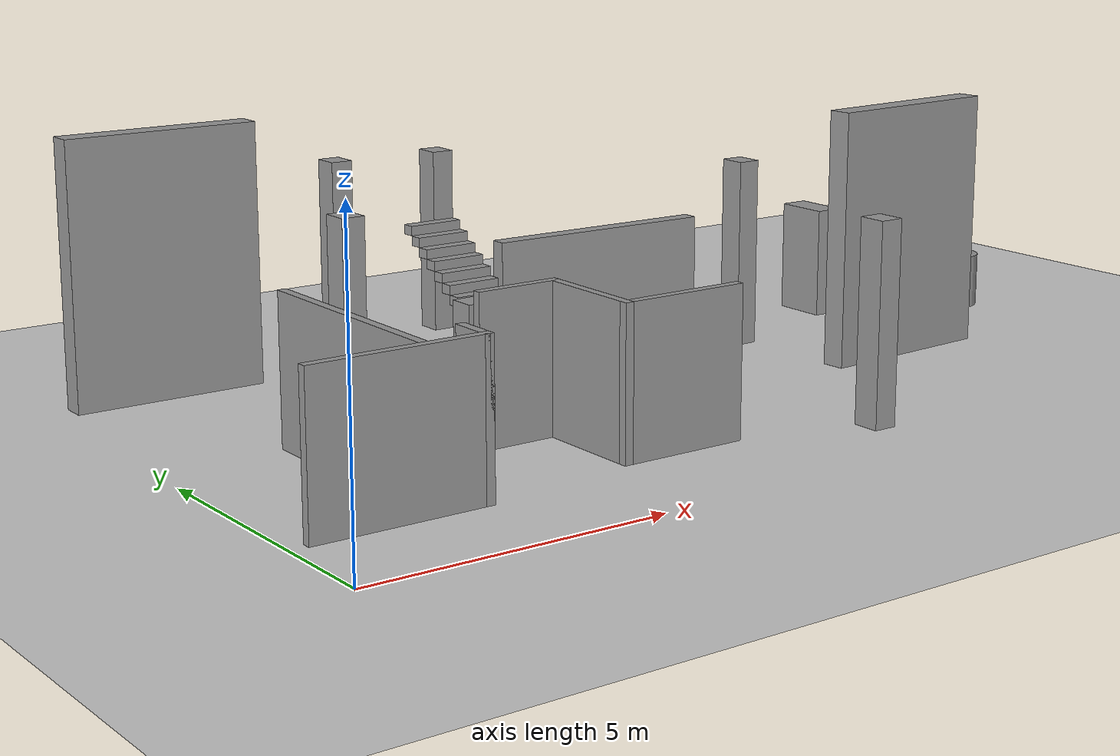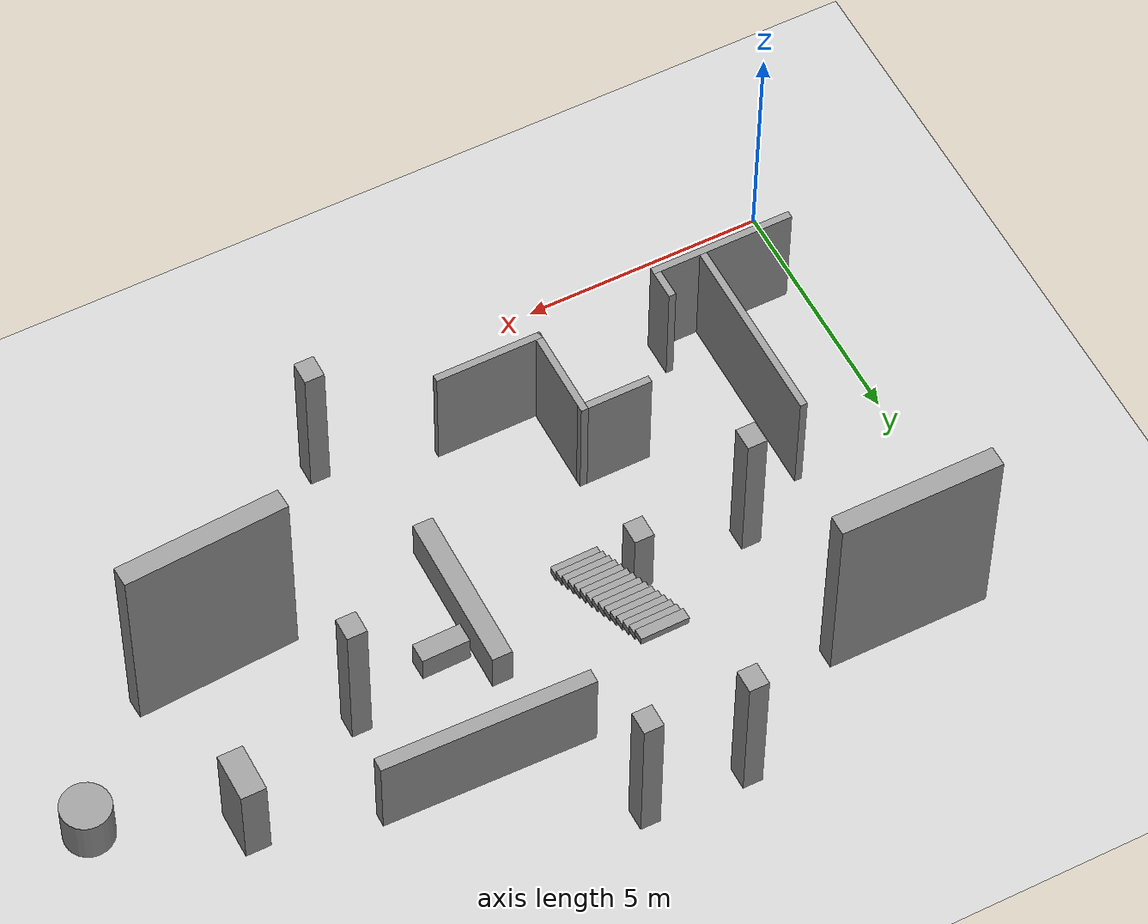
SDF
<sdf version="1.6">
 <world name="default">
  <plugin name="gazebo_octomap_plugin" filename="librotors_gazebo_octomap_plugin.so">
   <octomapPubTopic>world/octomap</octomapPubTopic>
   <octomapServiceName>world/get_octomap</octomapServiceName>
  </plugin>
  <plugin name="ros_interface_plugin" filename="librotors_gazebo_ros_interface_plugin.so"/>
  <light name="sun" type="directional">
   <pose>0 0 10 0 -0 0</pose>
   <diffuse>0.8 0.8 0.8 1</diffuse>
   <specular>0.1 0.1 0.1 1</specular>
   <attenuation>
    <range>1000</range>
    <constant>0.9</constant>
    <linear>0.01</linear>
    <quadratic>0.001</quadratic>
   </attenuation>
   <direction>-0.5 0.5 -1</direction>
  </light>
  <model name="ground_plane">
   <static>1</static>
   <link name="link">
    <collision name="collision">
     <geometry><plane><normal>0 0 1</normal><size>100 100</size></plane></geometry>
     <surface><friction><ode><mu>100</mu><mu2>50</mu2></ode></friction></surface>
    </collision>
    <visual name="visual">
     <cast_shadows>0</cast_shadows>
     <geometry><plane><normal>0 0 1</normal><size>100 100</size></plane></geometry>
     <material>
      <script><uri>file://media/materials/scripts/gazebo.material</uri><name>Gazebo/Grey</name></script>
     </material>
    </visual>
   </link>
  </model>
  <gravity>0 0 -9.8</gravity>
  <magnetic_field>6e-06 2.3e-05 -4.2e-05</magnetic_field>
  <atmosphere type="adiabatic"/>
  <physics name="default_physics" default="0" type="ode">
   <max_step_size>0.001</max_step_size>
   <real_time_factor>1</real_time_factor>
   <real_time_update_rate>1000</real_time_update_rate>
  </physics>
  <scene><ambient>0.4 0.4 0.4 1</ambient><background>0.7 0.7 0.7 1</background><shadows>1</shadows></scene>
  <spherical_coordinates>
   <surface_model>EARTH_WGS84</surface_model>
   <latitude_deg>0</latitude_deg>
   <longitude_deg>0</longitude_deg>
   <elevation>0</elevation>
   <heading_deg>0</heading_deg>
  </spherical_coordinates>
  <model name="map3_1st_0">
   <pose>4.20882 3.76971 0 0 -0 0</pose>
   <link name="Wall_10">
    <collision name="Wall_10_Collision">
     <geometry><box><size>0.75 0.15 2.5</size></box></geometry>
     <pose>0 0 1.25 0 -0 0</pose>
    </collision>
    <visual name="Wall_10_Visual">
     <pose>0 0 1.25 0 -0 0</pose>
     <geometry><box><size>0.75 0.15 2.5</size></box></geometry>
     <material>
      <script><uri>file://media/materials/scripts/gazebo.material</uri><name>Gazebo/Grey</name></script>
      <ambient>1 1 1 1</ambient>
     </material>
    </visual>
    <pose>-0.983648 -1.68452 0 0 -0 1.5708</pose>
   </link>
   <link name="Wall_13">
    <collision name="Wall_13_Collision">
     <geometry><box><size>4 0.15 2.5</size></box></geometry>
     <pose>0 0 1.25 0 -0 0</pose>
    </collision>
    <visual name="Wall_13_Visual">
     <pose>0 0 1.25 0 -0 0</pose>
     <geometry><box><size>4 0.15 2.5</size></box></geometry>
     <material>
      <script><uri>file://media/materials/scripts/gazebo.material</uri><name>Gazebo/Grey</name></script>
      <ambient>1 1 1 1</ambient>
     </material>
    </visual>
    <pose>-1.97373 0.059517 0 0 -0 1.5708</pose>
   </link>
   <link name="Wall_3">
    <collision name="Wall_3_Collision">
     <geometry><box><size>3 0.15 2.5</size></box></geometry>
     <pose>0 0 1.25 0 -0 0</pose>
    </collision>
    <visual name="Wall_3_Visual">
     <pose>0 0 1.25 0 -0 0</pose>
     <geometry><box><size>3 0.15 2.5</size></box></geometry>
     <material>
      <script><uri>file://media/materials/scripts/gazebo.material</uri><name>Gazebo/Grey</name></script>
      <ambient>1 1 1 1</ambient>
     </material>
    </visual>
    <pose>-2.40865 -1.98452 0 0 -0 0</pose>
   </link>
   <link name="Wall_6">
    <collision name="Wall_6_Collision">
     <geometry><box><size>2.25 0.15 2.5</size></box></geometry>
     <pose>0 0 1.25 0 -0 0</pose>
    </collision>
    <visual name="Wall_6_Visual">
     <pose>0 0 1.25 0 -0 0</pose>
     <geometry><box><size>2.25 0.15 2.5</size></box></geometry>
     <material>
      <script><uri>file://media/materials/scripts/gazebo.material</uri><name>Gazebo/Grey</name></script>
      <ambient>1 1 1 1</ambient>
     </material>
    </visual>
    <pose>2.78365 -1.63669 0 0 -0 3.14159</pose>
   </link>
   <link name="Wall_7">
    <collision name="Wall_7_Collision">
     <geometry><box><size>2 0.15 2.5</size></box></geometry>
     <pose>0 0 1.25 0 -0 0</pose>
    </collision>
    <visual name="Wall_7_Visual">
     <pose>0 0 1.25 0 -0 0</pose>
     <geometry><box><size>2 0.15 2.5</size></box></geometry>
     <material>
      <script><uri>file://media/materials/scripts/gazebo.material</uri><name>Gazebo/Grey</name></script>
      <ambient>1 1 1 1</ambient>
     </material>
    </visual>
    <pose>1.73365 -0.711691 0 0 -0 1.5708</pose>
   </link>
   <link name="Wall_8">
    <collision name="Wall_8_Collision">
     <geometry><box><size>1.5 0.15 2.5</size></box></geometry>
     <pose>0 0 1.25 0 -0 0</pose>
    </collision>
    <visual name="Wall_8_Visual">
     <pose>0 0 1.25 0 -0 0</pose>
     <geometry><box><size>1.5 0.15 2.5</size></box></geometry>
     <material>
      <script><uri>file://media/materials/scripts/gazebo.material</uri><name>Gazebo/Grey</name></script>
      <ambient>1 1 1 1</ambient>
     </material>
    </visual>
    <pose>1.05865 0.213309 0 0 -0 3.14159</pose>
   </link>
   <static>1</static>
  </model>
  <model name="unit_box_0">
   <pose>3.75528 6.50037 1.67886 7e-06 -1e-06 -0.000399</pose>
   <link name="link">
    <inertial>
     <mass>1</mass>
     <inertia>
      <ixx>0.166667</ixx>
      <ixy>0</ixy>
      <ixz>0</ixz>
      <iyy>0.166667</iyy>
      <iyz>0</iyz>
      <izz>0.166667</izz>
     </inertia>
    </inertial>
    <collision name="collision"><geometry><box><size>0.407507 0.47535 3.35772</size></box></geometry></collision>
    <visual name="visual">
     <geometry><box><size>0.407507 0.47535 3.35772</size></box></geometry>
     <material>
      <script><name>Gazebo/Grey</name><uri>file://media/materials/scripts/gazebo.material</uri></script>
     </material>
    </visual>
   </link>
  </model>
  <model name="unit_box_0_clone">
   <pose>6.03659 6.41846 0.841631 1e-06 -1e-06 0.001766</pose>
   <link name="link">
    <inertial>
     <mass>1</mass>
     <inertia>
      <ixx>0.166667</ixx>
      <ixy>0</ixy>
      <ixz>0</ixz>
      <iyy>0.166667</iyy>
      <iyz>0</iyz>
      <izz>0.166667</izz>
     </inertia>
    </inertial>
    <collision name="collision"><geometry><box><size>0.407507 0.47535 1.68326</size></box></geometry></collision>
    <visual name="visual">
     <geometry><box><size>0.407507 0.47535 1.68326</size></box></geometry>
     <material>
      <script><name>Gazebo/Grey</name><uri>file://media/materials/scripts/gazebo.material</uri></script>
     </material>
    </visual>
   </link>
  </model>
  <model name="Untitled">
   <pose>6.90502 7.27847 0 0 0 -3.13134</pose>
   <link name="Stairs_1">
    <visual name="Stairs_1_Visual_0">
     <pose>0 1.63333 0.083333 0 -0 0</pose>
     <geometry><box><size>1 0.233333 0.166667</size></box></geometry>
     <material>
      <script><uri>file://media/materials/scripts/gazebo.material</uri><name>Gazebo/Grey</name></script>
      <ambient>1 1 1 1</ambient>
     </material>
    </visual>
    <collision name="Stairs_1_Collision_0">
     <geometry><box><size>1 0.233333 0.166667</size></box></geometry>
     <pose>0 1.63333 0.083333 0 -0 0</pose>
    </collision>
    <visual name="Stairs_1_Visual_1">
     <pose>0 1.4 0.25 0 -0 0</pose>
     <geometry><box><size>1 0.233333 0.166667</size></box></geometry>
     <material>
      <script><uri>file://media/materials/scripts/gazebo.material</uri><name>Gazebo/Grey</name></script>
      <ambient>1 1 1 1</ambient>
     </material>
    </visual>
    <collision name="Stairs_1_Collision_1">
     <geometry><box><size>1 0.233333 0.166667</size></box></geometry>
     <pose>0 1.4 0.25 0 -0 0</pose>
    </collision>
    <visual name="Stairs_1_Visual_2">
     <pose>0 1.16667 0.416667 0 -0 0</pose>
     <geometry><box><size>1 0.233333 0.166667</size></box></geometry>
     <material>
      <script><uri>file://media/materials/scripts/gazebo.material</uri><name>Gazebo/Grey</name></script>
      <ambient>1 1 1 1</ambient>
     </material>
    </visual>
    <collision name="Stairs_1_Collision_2">
     <geometry><box><size>1 0.233333 0.166667</size></box></geometry>
     <pose>0 1.16667 0.416667 0 -0 0</pose>
    </collision>
    <visual name="Stairs_1_Visual_3">
     <pose>0 0.933334 0.583333 0 -0 0</pose>
     <geometry><box><size>1 0.233333 0.166667</size></box></geometry>
     <material>
      <script><uri>file://media/materials/scripts/gazebo.material</uri><name>Gazebo/Grey</name></script>
      <ambient>1 1 1 1</ambient>
     </material>
    </visual>
    <collision name="Stairs_1_Collision_3">
     <geometry><box><size>1 0.233333 0.166667</size></box></geometry>
     <pose>0 0.933334 0.583333 0 -0 0</pose>
    </collision>
    <visual name="Stairs_1_Visual_4">
     <pose>0 0.7 0.75 0 -0 0</pose>
     <geometry><box><size>1 0.233333 0.166667</size></box></geometry>
     <material>
      <script><uri>file://media/materials/scripts/gazebo.material</uri><name>Gazebo/Grey</name></script>
      <ambient>1 1 1 1</ambient>
     </material>
    </visual>
    <collision name="Stairs_1_Collision_4">
     <geometry><box><size>1 0.233333 0.166667</size></box></geometry>
     <pose>0 0.7 0.75 0 -0 0</pose>
    </collision>
    <visual name="Stairs_1_Visual_5">
     <pose>0 0.466666 0.916667 0 -0 0</pose>
     <geometry><box><size>1 0.233333 0.166667</size></box></geometry>
     <material>
      <script><uri>file://media/materials/scripts/gazebo.material</uri><name>Gazebo/Grey</name></script>
      <ambient>1 1 1 1</ambient>
     </material>
    </visual>
    <collision name="Stairs_1_Collision_5">
     <geometry><box><size>1 0.233333 0.166667</size></box></geometry>
     <pose>0 0.466666 0.916667 0 -0 0</pose>
    </collision>
    <visual name="Stairs_1_Visual_6">
     <pose>0 0.233333 1.08333 0 -0 0</pose>
     <geometry><box><size>1 0.233333 0.166667</size></box></geometry>
     <material>
      <script><uri>file://media/materials/scripts/gazebo.material</uri><name>Gazebo/Grey</name></script>
      <ambient>1 1 1 1</ambient>
     </material>
    </visual>
    <collision name="Stairs_1_Collision_6">
     <geometry><box><size>1 0.233333 0.166667</size></box></geometry>
     <pose>0 0.233333 1.08333 0 -0 0</pose>
    </collision>
    <visual name="Stairs_1_Visual_7">
     <pose>0 -0 1.25 0 -0 0</pose>
     <geometry><box><size>1 0.233333 0.166667</size></box></geometry>
     <material>
      <script><uri>file://media/materials/scripts/gazebo.material</uri><name>Gazebo/Grey</name></script>
      <ambient>1 1 1 1</ambient>
     </material>
    </visual>
    <collision name="Stairs_1_Collision_7">
     <geometry><box><size>1 0.233333 0.166667</size></box></geometry>
     <pose>0 -0 1.25 0 -0 0</pose>
    </collision>
    <visual name="Stairs_1_Visual_8">
     <pose>0 -0.233333 1.41667 0 -0 0</pose>
     <geometry><box><size>1 0.233333 0.166667</size></box></geometry>
     <material>
      <script><uri>file://media/materials/scripts/gazebo.material</uri><name>Gazebo/Grey</name></script>
      <ambient>1 1 1 1</ambient>
     </material>
    </visual>
    <collision name="Stairs_1_Collision_8">
     <geometry><box><size>1 0.233333 0.166667</size></box></geometry>
     <pose>0 -0.233333 1.41667 0 -0 0</pose>
    </collision>
    <visual name="Stairs_1_Visual_9">
     <pose>0 -0.466667 1.58333 0 -0 0</pose>
     <geometry><box><size>1 0.233333 0.166667</size></box></geometry>
     <material>
      <script><uri>file://media/materials/scripts/gazebo.material</uri><name>Gazebo/Grey</name></script>
      <ambient>1 1 1 1</ambient>
     </material>
    </visual>
    <collision name="Stairs_1_Collision_9">
     <geometry><box><size>1 0.233333 0.166667</size></box></geometry>
     <pose>0 -0.466667 1.58333 0 -0 0</pose>
    </collision>
    <visual name="Stairs_1_Visual_10">
     <pose>0 -0.7 1.75 0 -0 0</pose>
     <geometry><box><size>1 0.233333 0.166667</size></box></geometry>
     <material>
      <script><uri>file://media/materials/scripts/gazebo.material</uri><name>Gazebo/Grey</name></script>
      <ambient>1 1 1 1</ambient>
     </material>
    </visual>
    <collision name="Stairs_1_Collision_10">
     <geometry><box><size>1 0.233333 0.166667</size></box></geometry>
     <pose>0 -0.7 1.75 0 -0 0</pose>
    </collision>
    <visual name="Stairs_1_Visual_11">
     <pose>0 -0.933334 1.91667 0 -0 0</pose>
     <geometry><box><size>1 0.233333 0.166667</size></box></geometry>
     <material>
      <script><uri>file://media/materials/scripts/gazebo.material</uri><name>Gazebo/Grey</name></script>
      <ambient>1 1 1 1</ambient>
     </material>
    </visual>
    <collision name="Stairs_1_Collision_11">
     <geometry><box><size>1 0.233333 0.166667</size></box></geometry>
     <pose>0 -0.933334 1.91667 0 -0 0</pose>
    </collision>
    <visual name="Stairs_1_Visual_12">
     <pose>0 -1.16667 2.08333 0 -0 0</pose>
     <geometry><box><size>1 0.233333 0.166667</size></box></geometry>
     <material>
      <script><uri>file://media/materials/scripts/gazebo.material</uri><name>Gazebo/Grey</name></script>
      <ambient>1 1 1 1</ambient>
     </material>
    </visual>
    <collision name="Stairs_1_Collision_12">
     <geometry><box><size>1 0.233333 0.166667</size></box></geometry>
     <pose>0 -1.16667 2.08333 0 -0 0</pose>
    </collision>
    <visual name="Stairs_1_Visual_13">
     <pose>0 -1.4 2.25 0 -0 0</pose>
     <geometry><box><size>1 0.233333 0.166667</size></box></geometry>
     <material>
      <script><uri>file://media/materials/scripts/gazebo.material</uri><name>Gazebo/Grey</name></script>
      <ambient>1 1 1 1</ambient>
     </material>
    </visual>
    <collision name="Stairs_1_Collision_13">
     <geometry><box><size>1 0.233333 0.166667</size></box></geometry>
     <pose>0 -1.4 2.25 0 -0 0</pose>
    </collision>
    <visual name="Stairs_1_Visual_14">
     <pose>0 -1.63333 2.41667 0 -0 0</pose>
     <geometry><box><size>1 0.233333 0.166667</size></box></geometry>
     <material>
      <script><uri>file://media/materials/scripts/gazebo.material</uri><name>Gazebo/Grey</name></script>
      <ambient>1 1 1 1</ambient>
     </material>
    </visual>
    <collision name="Stairs_1_Collision_14">
     <geometry><box><size>1 0.233333 0.166667</size></box></geometry>
     <pose>0 -1.63333 2.41667 0 -0 0</pose>
    </collision>
   </link>
   <static>1</static>
  </model>
  <model name="unit_box_1_0">
   <pose>9.3295 5.63117 0.455574 0.000199 1e-06 -0.006136</pose>
   <link name="link">
    <inertial>
     <mass>1</mass>
     <inertia>
      <ixx>0.166667</ixx>
      <ixy>0</ixy>
      <ixz>0</ixz>
      <iyy>0.166667</iyy>
      <iyz>0</iyz>
      <izz>0.166667</izz>
     </inertia>
    </inertial>
    <collision name="collision"><geometry><box><size>0.418038 3.34421 0.911812</size></box></geometry></collision>
    <visual name="visual">
     <geometry><box><size>0.418038 3.34421 0.911812</size></box></geometry>
     <material>
      <script><name>Gazebo/Grey</name><uri>file://media/materials/scripts/gazebo.material</uri></script>
     </material>
    </visual>
   </link>
  </model>
  <model name="unit_box_0_clone_0">
   <pose>10.371 1.42368 1.67886 1e-06 -0 -0.001033</pose>
   <link name="link">
    <inertial>
     <mass>1</mass>
     <inertia>
      <ixx>0.166667</ixx>
      <ixy>0</ixy>
      <ixz>0</ixz>
      <iyy>0.166667</iyy>
      <iyz>0</iyz>
      <izz>0.166667</izz>
     </inertia>
    </inertial>
    <collision name="collision"><geometry><box><size>0.407507 0.47535 3.35772</size></box></geometry></collision>
    <visual name="visual">
     <geometry><box><size>0.407507 0.47535 3.35772</size></box></geometry>
     <material>
      <script><name>Gazebo/Grey</name><uri>file://media/materials/scripts/gazebo.material</uri></script>
     </material>
    </visual>
   </link>
  </model>
  <model name="unit_box_1_0_clone">
   <pose>2.07769 9.60412 2.24124 0 -1e-06 -1.57267</pose>
   <link name="link">
    <inertial>
     <mass>1</mass>
     <inertia>
      <ixx>0.166667</ixx>
      <ixy>0</ixy>
      <ixz>0</ixz>
      <iyy>0.166667</iyy>
      <iyz>0</iyz>
      <izz>0.166667</izz>
     </inertia>
    </inertial>
    <collision name="collision"><geometry><box><size>0.418038 3.34421 4.48249</size></box></geometry></collision>
    <visual name="visual">
     <geometry><box><size>0.418038 3.34421 4.48249</size></box></geometry>
     <material>
      <script><name>Gazebo/Grey</name><uri>file://media/materials/scripts/gazebo.material</uri></script>
     </material>
    </visual>
   </link>
  </model>
  <model name="unit_box_0_clone_clone">
   <pose>6.25291 11.1315 1.67886 0 -0 0.000119</pose>
   <link name="link">
    <inertial>
     <mass>1</mass>
     <inertia>
      <ixx>0.166667</ixx>
      <ixy>0</ixy>
      <ixz>0</ixz>
      <iyy>0.166667</iyy>
      <iyz>0</iyz>
      <izz>0.166667</izz>
     </inertia>
    </inertial>
    <collision name="collision"><geometry><box><size>0.407507 0.47535 3.35772</size></box></geometry></collision>
    <visual name="visual">
     <geometry><box><size>0.407507 0.47535 3.35772</size></box></geometry>
     <material>
      <script><name>Gazebo/Grey</name><uri>file://media/materials/scripts/gazebo.material</uri></script>
     </material>
    </visual>
   </link>
  </model>
  <model name="unit_box_0_clone_clone_0">
   <pose>8.3354 11.0444 1.67886 0 1e-06 -0.000641</pose>
   <link name="link">
    <inertial>
     <mass>1</mass>
     <inertia>
      <ixx>0.166667</ixx>
      <ixy>0</ixy>
      <ixz>0</ixz>
      <iyy>0.166667</iyy>
      <iyz>0</iyz>
      <izz>0.166667</izz>
     </inertia>
    </inertial>
    <collision name="collision"><geometry><box><size>0.407507 0.47535 3.35772</size></box></geometry></collision>
    <visual name="visual">
     <geometry><box><size>0.407507 0.47535 3.35772</size></box></geometry>
     <material>
      <script><name>Gazebo/Grey</name><uri>file://media/materials/scripts/gazebo.material</uri></script>
     </material>
    </visual>
   </link>
  </model>
  <model name="unit_box_1_0_clone_0">
   <pose>14.0059 4.60942 2.24124 0 1e-06 -1.51175</pose>
   <link name="link">
    <inertial>
     <mass>1</mass>
     <inertia>
      <ixx>0.166667</ixx>
      <ixy>0</ixy>
      <ixz>0</ixz>
      <iyy>0.166667</iyy>
      <iyz>0</iyz>
      <izz>0.166667</izz>
     </inertia>
    </inertial>
    <collision name="collision"><geometry><box><size>0.418038 3.34421 4.48249</size></box></geometry></collision>
    <visual name="visual">
     <geometry><box><size>0.418038 3.34421 4.48249</size></box></geometry>
     <material>
      <script><name>Gazebo/Grey</name><uri>file://media/materials/scripts/gazebo.material</uri></script>
     </material>
    </visual>
   </link>
  </model>
  <model name="unit_box_0_clone_clone_0_clone">
   <pose>12.1537 6.8604 1.67886 0 1e-06 0.001901</pose>
   <link name="link">
    <inertial>
     <mass>1</mass>
     <inertia>
      <ixx>0.166667</ixx>
      <ixy>0</ixy>
      <ixz>0</ixz>
      <iyy>0.166667</iyy>
      <iyz>0</iyz>
      <izz>0.166667</izz>
     </inertia>
    </inertial>
    <collision name="collision"><geometry><box><size>0.407507 0.47535 3.35772</size></box></geometry></collision>
    <visual name="visual">
     <geometry><box><size>0.407507 0.47535 3.35772</size></box></geometry>
     <material>
      <script><name>Gazebo/Grey</name><uri>file://media/materials/scripts/gazebo.material</uri></script>
     </material>
    </visual>
   </link>
  </model>
  <model name="unit_box_1">
   <pose>14.9391 7.99103 1.01402 -2e-06 2e-06 0.001783</pose>
   <link name="link">
    <inertial>
     <mass>1</mass>
     <inertia>
      <ixx>0.166667</ixx>
      <ixy>0</ixy>
      <ixz>0</ixz>
      <iyy>0.166667</iyy>
      <iyz>0</iyz>
      <izz>0.166667</izz>
     </inertia>
    </inertial>
    <collision name="collision"><geometry><box><size>0.513602 1 2.02805</size></box></geometry></collision>
    <visual name="visual">
     <geometry><box><size>0.513602 1 2.02805</size></box></geometry>
     <material>
      <script><name>Gazebo/Grey</name><uri>file://media/materials/scripts/gazebo.material</uri></script>
     </material>
    </visual>
   </link>
  </model>
  <model name="unit_box_2">
   <pose>10.13 6.34509 0.298988 0 -0 0.012627</pose>
   <link name="link">
    <inertial>
     <mass>1</mass>
     <inertia>
      <ixx>0.166667</ixx>
      <ixy>0</ixy>
      <ixz>0</ixz>
      <iyy>0.166667</iyy>
      <iyz>0</iyz>
      <izz>0.166667</izz>
     </inertia>
    </inertial>
    <collision name="collision"><geometry><box><size>1 0.41626 0.597976</size></box></geometry></collision>
    <visual name="visual">
     <geometry><box><size>1 0.41626 0.597976</size></box></geometry>
     <material>
      <script><name>Gazebo/Grey</name><uri>file://media/materials/scripts/gazebo.material</uri></script>
     </material>
    </visual>
   </link>
  </model>
  <model name="unit_box_3">
   <pose>10.5134 8.9731 0.976993 -1.1e-05 0.000255 -0.02486</pose>
   <link name="link">
    <inertial>
     <mass>1</mass>
     <inertia>
      <ixx>0.166667</ixx>
      <ixy>0</ixy>
      <ixz>0</ixz>
      <iyy>0.166667</iyy>
      <iyz>0</iyz>
      <izz>0.166667</izz>
     </inertia>
    </inertial>
    <collision name="collision"><geometry><box><size>4.34905 0.292137 1.95509</size></box></geometry></collision>
    <visual name="visual">
     <geometry><box><size>4.34905 0.292137 1.95509</size></box></geometry>
     <material>
      <script><name>Gazebo/Grey</name><uri>file://media/materials/scripts/gazebo.material</uri></script>
     </material>
    </visual>
   </link>
  </model>
  <model name="unit_cylinder_0">
   <pose>17.5346 6.75177 0.499997 3e-06 4e-06 -0</pose>
   <link name="link">
    <inertial>
     <mass>1</mass>
     <inertia><ixx>0.145833</ixx><ixy>0</ixy><ixz>0</ixz><iyy>0.145833</iyy><iyz>0</iyz><izz>0.125</izz></inertia>
    </inertial>
    <collision name="collision">
     <geometry><cylinder><radius>0.5</radius><length>1</length></cylinder></geometry>
    </collision>
    <visual name="visual">
     <geometry><cylinder><radius>0.5</radius><length>1</length></cylinder></geometry>
     <material>
      <script><name>Gazebo/Grey</name><uri>file://media/materials/scripts/gazebo.material</uri></script>
     </material>
    </visual>
   </link>
  </model>
 </world>
</sdf>
